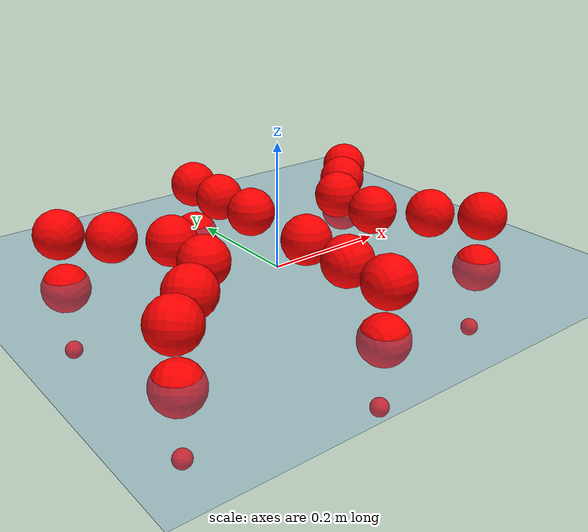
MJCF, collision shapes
<mujoco model="Golem">
  <compiler angle="radian" assetdir="assets" balanceinertia="true" inertiafromgeom="false"/>

  <option timestep="0.005" density="1.2" viscosity="2e-05"/>

  <size nkey="1"/>

  <visual>
    <quality shadowsize="8192"/>
    <map shadowclip="0.5"/>
  </visual>

  <default>
    <default class="/">
      <joint armature="0.01" damping="0.01" frictionloss="0.01"/>
      <geom contype="0" conaffinity="0" group="1" solref="-1000 -80"/>
      <site size="0.01 0.005 0.005" group="5"/>
      <general forcelimited="true" biastype="affine" gainprm="25" biasprm="0 -25 -0.5"/>
      <default class="visual">
        <geom type="mesh" group="2"/>
      </default>
      <default class="collision">
        <geom group="3"/>
      </default>
      <default class="foot">
        <geom size="0.01 0 0" condim="6" group="4" priority="1" solimp="0.015 1 0.01"/>
      </default>
      <default class="reward_collision_sphere">
        <geom group="5" rgba="1 0 0 1"/>
      </default>
    </default>
  </default>

  <asset>
    <texture type="skybox" colorspace="auto" name="//unnamed_texture_0" builtin="gradient" rgb1="0.95 0.95 0.95" rgb2="0.95 0.95 0.95" width="100" height="600"/>
    <texture type="2d" colorspace="auto" name="texplane" builtin="checker" rgb1="0.345 0.575 0.748" rgb2="0.345 0.575 0.748" markrgb="1 1 1" width="512" height="512"/>
    <material name="MatPlane" class="/" texture="texplane" texuniform="true" texrepeat="2 2" specular="0.9"/>
    <mesh name="body" class="/" file="body.stl" scale="0.001 0.001 0.001"/>
    <mesh name="coxa" class="/" file="coxa.stl" scale="0.001 0.001 0.001"/>
    <mesh name="femur" class="/" file="femur.stl" scale="0.001 0.001 0.001"/>
    <mesh name="tibia" class="/" file="tibia.stl" scale="0.001 0.001 0.001"/>
    <mesh name="tarsus" class="/" file="tarsus.stl" scale="0.001 0.001 0.001"/>
  </asset>

  <worldbody>
    <geom name="floor" class="/" size="100 100 0.125" type="plane" group="0" material="MatPlane"/>
    <light name="toplight_shadow" class="/" pos="0 0 5" dir="0.0990148 0.0990148 -0.990148" type="directional" ambient="0.04 0.04 0.04" diffuse="0.55 0.55 0.55" specular="0.12 0.12 0.12"/>
    <light name="toplight_fill" class="/" pos="0 0 5" dir="0.0990148 0.0990148 -0.990148" type="directional" castshadow="false" ambient="0.04 0.04 0.04" diffuse="0.3 0.3 0.3" specular="0.08 0.08 0.08"/>
    <body name="trunk" pos="0.00071688 0.000902627 0.000475525" quat="1 4.63967e-05 0.000226246 -0.000371888">
      <inertial pos="-0.000393998 0.000340773 -0.00483363" quat="0.999991 0.00430025 -0.000298573 -0.000279844" mass="3.17921" diaginertia="0.0110537 0.00249789 0.0147483"/>
      <joint name="//unnamed_joint_0" type="free"/>
      <geom name="//unnamed_geom_1" class="/" pos="0 0 0.0693966" quat="1 0 0 0" type="mesh" rgba="0.9 0.9 0.9 1" mesh="body"/>
      <site name="imu" class="/" pos="0.134013 -0.0036237 0.107595" size="0.00955414"/>
      <camera name="track" class="/" pos="0 -1.51734 0" quat="0.707107 0.707107 0 0" mode="trackcom"/>
      <camera name="ego_camera" class="/" pos="0.133022 0 0.108432" quat="-0.5 -0.5 0.5 0.5"/>
      <body name="coxa_RR" pos="-0.181675 -0.0634596 0.0690282" quat="0.382677 -0.00036536 -0.000155018 -0.923882">
        <inertial pos="-0.000238903 0.000496512 3.82443e-05" quat="1 -0.000390547 -0.000166109 0.000776578" mass="0.174605" diaginertia="0.0113381 0.00251281 0.0146811"/>
        <joint name="coxa_joint_RR" class="/" pos="0 0 0" axis="0.000941749 0.0033728 -0.999994" range="-3.14171 3.1544" armature="0.00935374" damping="0.0115862" frictionloss="0.00950426"/>
        <geom name="//unnamed_geom_2" class="/" type="mesh" rgba="0.2 0.2 0.2 1" mesh="coxa"/>
        <geom name="//unnamed_geom_3" class="reward_collision_sphere" size="0.0382166" pos="-0.0306975 0 0"/>
        <body name="femur_RR" pos="0.0609732 0.00197338 -0.000363097" quat="0.499854 -0.49991 0.500177 0.500058">
          <inertial pos="-0.0012617 2.76285e-05 -0.00177835" quat="0.999973 0.00656446 0.00125885 -0.00304356" mass="0.174389" diaginertia="0.0112408 0.00252257 0.0149287"/>
          <joint name="femur_joint_RR" class="/" pos="0 0 0" axis="0.00434283 0.00305216 -0.999986" range="-3.13766 3.13952" armature="0.00954972" damping="0" frictionloss="0.00949961"/>
          <geom name="//unnamed_geom_4" class="/" type="mesh" rgba="0.9 0.9 0.9 1" mesh="femur"/>
          <geom name="//unnamed_geom_5" class="reward_collision_sphere" size="0.0382166"/>
          <body name="tibia_RR" pos="0.0010977 -0.082843 -0.000883871" quat="0.000106516 1 -8.17697e-05 -7.13801e-05">
            <inertial pos="0.000167438 -7.21299e-05 -0.000391316" quat="0.99999 -0.00049551 -0.00451734 -0.000508013" mass="0.176684" diaginertia="0.0114188 0.00256057 0.0153554"/>
            <joint name="tibia_joint_RR" class="/" pos="0 0 0" axis="0.00085907 0.000927629 0.999999" range="-3.12139 3.13735" armature="0.0100123" damping="0" frictionloss="0.00963223"/>
            <geom name="//unnamed_geom_6" class="/" type="mesh" rgba="0.2 0.2 0.2 1" mesh="tibia"/>
            <geom name="//unnamed_geom_7" class="reward_collision_sphere" size="0.0382166"/>
            <body name="tarsus_RR" pos="0.0895995 -0.000323466 -0.000238867" quat="1 -1.2886e-05 1.79258e-05 6.7312e-06">
              <inertial pos="0.0630934 0.00044173 -0.000260877" quat="0.495905 0.503236 0.504013 0.496792" mass="0.180045" diaginertia="0.0111954 0.00252713 0.0152337"/>
              <joint name="tarsus_joint_RR" class="/" pos="0 0 0" axis="-0.00168263 0.000381547 0.999999" range="-3.1347 3.15305" armature="0.00991991" damping="0.0413901" frictionloss="0.00951617"/>
              <geom name="//unnamed_geom_8" class="/" type="mesh" rgba="0.9 0.9 0.9 1" mesh="tarsus"/>
              <geom name="foot_1" class="foot" size="0.00943897" pos="0.114604 0 0" quat="0 -0.707107 0 0.707107"/>
              <geom name="//unnamed_geom_10" class="reward_collision_sphere" size="0.0382166"/>
              <geom name="//unnamed_geom_11" class="reward_collision_sphere" size="0.0143312" pos="0.109999 0 0"/>
              <site name="foot_1" class="foot" pos="0.114604 0 0" quat="0 -0.707107 0 0.707107" size="0.00955414"/>
            </body>
          </body>
        </body>
      </body>
      <body name="coxa_RM" pos="-0.000485877 -0.100999 0.0695419" quat="0.707284 -0.000533914 -0.000275083 -0.70693">
        <inertial pos="0.000147027 0.000168783 -0.000554987" quat="0.999999 -0.00128951 -0.000713437 -0.000201393" mass="0.174543" diaginertia="0.0111268 0.00251196 0.0150739"/>
        <joint name="coxa_joint_RM" class="/" pos="0 0 0" axis="0.000163935 -0.00034175 -1" range="-3.14699 3.13027" armature="0.00979763" damping="0.0103393" frictionloss="0.00997213"/>
        <geom name="//unnamed_geom_12" class="/" type="mesh" rgba="0.2 0.2 0.2 1" mesh="coxa"/>
        <geom name="//unnamed_geom_13" class="reward_collision_sphere" size="0.0382166" pos="-0.0306975 0 0"/>
        <body name="femur_RM" pos="0.060136 -0.000787501 -0.000927189" quat="0.499736 -0.500199 0.500117 0.499948">
          <inertial pos="0.000980355 3.02176e-05 0.000208397" quat="0.999979 0.00335123 0.00313177 -0.00467011" mass="0.174064" diaginertia="0.0112333 0.00251362 0.0148989"/>
          <joint name="femur_joint_RM" class="/" pos="0 0 0" axis="-0.000182939 -0.00014662 -1" range="-3.14522 3.13605" armature="0.00925092" damping="0.01002" frictionloss="0.00943346"/>
          <geom name="//unnamed_geom_14" class="/" type="mesh" rgba="0.9 0.9 0.9 1" mesh="femur"/>
          <geom name="//unnamed_geom_15" class="reward_collision_sphere" size="0.0382166"/>
          <body name="tibia_RM" pos="-0.000335721 -0.0810097 -0.000370296" quat="0.000153526 1 -3.60963e-05 3.5262e-05">
            <inertial pos="-0.00125813 -0.000685249 0.000864758" quat="0.999997 -0.000292419 0.00235268 -0.00116226" mass="0.172656" diaginertia="0.0112258 0.00253083 0.0147782"/>
            <joint name="tibia_joint_RM" class="/" pos="0 0 0" axis="0.00548112 0.00264334 0.999981" stiffness="0.000948518" range="-3.14591 3.15355" armature="0.0095959" damping="0.0134055" frictionloss="0.00987849"/>
            <geom name="//unnamed_geom_16" class="/" type="mesh" rgba="0.2 0.2 0.2 1" mesh="tibia"/>
            <geom name="//unnamed_geom_17" class="reward_collision_sphere" size="0.0382166"/>
            <body name="tarsus_RM" pos="0.088398 -0.00111236 0.000938044" quat="1 4.60245e-05 -7.77207e-05 0.000111423">
              <inertial pos="0.0610718 -0.000233332 0.00024636" quat="0.499082 0.50153 0.499536 0.499849" mass="0.173941" diaginertia="0.0110883 0.00249518 0.0148678"/>
              <joint name="tarsus_joint_RM" class="/" pos="0 0 0" axis="-0.000352827 -0.000717486 1" range="-3.14052 3.13901" armature="0.00953263" damping="0.00785619" frictionloss="0.00952578"/>
              <geom name="//unnamed_geom_18" class="/" type="mesh" rgba="0.9 0.9 0.9 1" mesh="tarsus"/>
              <geom name="foot_2" class="foot" size="0.00928003" pos="0.114604 0 0" quat="0 -0.707107 0 0.707107"/>
              <geom name="//unnamed_geom_20" class="reward_collision_sphere" size="0.0382166"/>
              <geom name="//unnamed_geom_21" class="reward_collision_sphere" size="0.0143312" pos="0.109999 0 0"/>
              <site name="foot_2" class="foot" pos="0.114604 0 0" quat="0 -0.707107 0 0.707107" size="0.00955414"/>
            </body>
          </body>
        </body>
      </body>
      <body name="coxa_RF" pos="0.182149 -0.0625709 0.0690683" quat="0.923889 0.000288884 -6.9133e-05 -0.38266">
        <inertial pos="-0.00139284 0.000423611 0.000127259" quat="0.999999 -0.000221677 0.000358228 0.00127784" mass="0.176909" diaginertia="0.0109923 0.00245982 0.0148746"/>
        <joint name="coxa_joint_RF" class="/" pos="0 0 0" axis="0.00295363 -0.00273647 -0.999992" stiffness="0.000179537" range="-3.12184 3.13646" armature="0.00942709" damping="0.00841555" frictionloss="0.00975786"/>
        <geom name="//unnamed_geom_22" class="/" type="mesh" rgba="0.2 0.2 0.2 1" mesh="coxa"/>
        <geom name="//unnamed_geom_23" class="reward_collision_sphere" size="0.0382166" pos="-0.0306975 0 0"/>
        <body name="femur_RF" pos="0.060006 -0.000801295 -0.000458296" quat="0.499807 -0.500142 0.499844 0.500207">
          <inertial pos="-0.000860624 0.00104752 -0.000864004" quat="1 3.0934e-05 -0.000197921 0.000182654" mass="0.175672" diaginertia="0.0111007 0.00250461 0.0149089"/>
          <joint name="femur_joint_RF" class="/" pos="0 0 0" axis="-0.00223205 0.00310911 -0.999993" range="-3.12792 3.1508" armature="0.00954079" damping="0.0108176" frictionloss="0.00951161"/>
          <geom name="//unnamed_geom_24" class="/" type="mesh" rgba="0.9 0.9 0.9 1" mesh="femur"/>
          <geom name="//unnamed_geom_25" class="reward_collision_sphere" size="0.0382166"/>
          <body name="tibia_RF" pos="0.000615782 -0.0813052 -0.000641895" quat="9.47487e-06 1 -0.000117085 -7.10093e-05">
            <inertial pos="-0.000649273 -1.45386e-05 0.000957867" quat="0.999989 -0.00357408 -0.000723456 -0.00294809" mass="0.173603" diaginertia="0.0111943 0.00251461 0.0149672"/>
            <joint name="tibia_joint_RF" class="/" pos="0 0 0" axis="-0.00142147 -0.00481565 0.999987" range="-3.14403 3.14496" armature="0.00946396" damping="0" frictionloss="0.00944082"/>
            <geom name="//unnamed_geom_26" class="/" type="mesh" rgba="0.2 0.2 0.2 1" mesh="tibia"/>
            <geom name="//unnamed_geom_27" class="reward_collision_sphere" size="0.0382166"/>
            <body name="tarsus_RF" pos="0.0898191 0.000358573 -1.23405e-05" quat="1 5.09679e-05 0.000210463 0.000104464">
              <inertial pos="0.0597625 0.000127371 0.000279823" quat="0.500451 0.50062 0.498699 0.500228" mass="0.173425" diaginertia="0.0111057 0.00256344 0.0149941"/>
              <joint name="tarsus_joint_RF" class="/" pos="0 0 0" axis="-0.0029352 -0.00706013 0.999971" range="-3.12024 3.13562" armature="0.00946723" damping="0" frictionloss="0.010339"/>
              <geom name="//unnamed_geom_28" class="/" type="mesh" rgba="0.9 0.9 0.9 1" mesh="tarsus"/>
              <geom name="foot_3" class="foot" size="0.00988152" pos="0.114604 0 0" quat="0 -0.707107 0 0.707107"/>
              <geom name="//unnamed_geom_30" class="reward_collision_sphere" size="0.0382166"/>
              <geom name="//unnamed_geom_31" class="reward_collision_sphere" size="0.0143312" pos="0.109999 0 0"/>
              <site name="foot_3" class="foot" pos="0.114604 0 0" quat="0 -0.707107 0 0.707107" size="0.00955414"/>
            </body>
          </body>
        </body>
      </body>
      <body name="coxa_LR" pos="-0.181968 0.0653262 0.0707993" quat="0.382578 -0.000141132 0.000226096 0.923923">
        <inertial pos="-0.000343611 -9.60653e-05 -0.000895563" quat="1 0.000106885 0.000765761 -2.7691e-05" mass="0.169979" diaginertia="0.0109595 0.00245858 0.0147123"/>
        <joint name="coxa_joint_LR" class="/" pos="0 0 0" axis="0.000721931 -0.000564957 -1" range="-3.1358 3.16906" armature="0.00948984" damping="0.00597806" frictionloss="0.0088356"/>
        <geom name="//unnamed_geom_32" class="/" type="mesh" rgba="0.2 0.2 0.2 1" mesh="coxa"/>
        <geom name="//unnamed_geom_33" class="reward_collision_sphere" size="0.0382166" pos="-0.0306975 0 0"/>
        <body name="femur_LR" pos="0.0611956 -0.00311697 -0.00150966" quat="0.499994 -0.499997 0.5 0.500009">
          <inertial pos="0.000422341 -0.000349344 -1.75715e-06" quat="0.999989 -0.00467905 0.000246488 0.000307594" mass="0.176425" diaginertia="0.0114676 0.00259625 0.0151841"/>
          <joint name="femur_joint_LR" class="/" pos="0 0 0" axis="-0.000979081 0.00304146 0.999995" range="-3.14248 3.1423" armature="0.00927414" damping="0.00770697" frictionloss="0.00965449"/>
          <geom name="//unnamed_geom_34" class="/" type="mesh" rgba="0.9 0.9 0.9 1" mesh="femur"/>
          <geom name="//unnamed_geom_35" class="reward_collision_sphere" size="0.0382166"/>
          <body name="tibia_LR" pos="0.000294065 -0.0822938 -0.00127388" quat="6.70998e-05 1 1.84169e-05 2.38772e-05">
            <inertial pos="-0.00104223 0.00141546 0.000174207" quat="1 6.37401e-05 1.40863e-06 6.56553e-05" mass="0.175405" diaginertia="0.0114478 0.00251772 0.0147057"/>
            <joint name="tibia_joint_LR" class="/" pos="0 0 0" axis="2.15244e-05 0.000138831 -1" range="-3.14236 3.13822" armature="0.00937408" damping="0.00159447" frictionloss="0.0091023"/>
            <geom name="//unnamed_geom_36" class="/" type="mesh" rgba="0.2 0.2 0.2 1" mesh="tibia"/>
            <geom name="//unnamed_geom_37" class="reward_collision_sphere" size="0.0382166"/>
            <body name="tarsus_LR" pos="0.0908153 -0.000244704 0.00247407" quat="1 0.000345568 0.000193522 -0.000315253">
              <inertial pos="0.0630902 0.00128711 0.000673795" quat="0.500079 0.49624 0.501076 0.502583" mass="0.169733" diaginertia="0.0108898 0.00246249 0.0146515"/>
              <joint name="tarsus_joint_LR" class="/" pos="0 0 0" axis="0.00147717 0.000106522 -0.999999" stiffness="0.00110654" range="-3.14941 3.13136" armature="0.00877282" damping="0.0286845" frictionloss="0.009808"/>
              <geom name="//unnamed_geom_38" class="/" type="mesh" rgba="0.9 0.9 0.9 1" mesh="tarsus"/>
              <geom name="foot_4" class="foot" size="0.0093952" pos="0.114604 0 0" quat="0.707107 0 -0.707107 0"/>
              <geom name="//unnamed_geom_40" class="reward_collision_sphere" size="0.0382166"/>
              <geom name="//unnamed_geom_41" class="reward_collision_sphere" size="0.0143312" pos="0.109999 0 0"/>
              <site name="foot_4" class="foot" pos="0.114604 0 0" quat="0.707107 0 -0.707107 0" size="0.00955414"/>
            </body>
          </body>
        </body>
      </body>
      <body name="coxa_LM" pos="-0.000257989 0.0992195 0.0699095" quat="0.706653 -0.000270137 0.00020122 0.70756">
        <inertial pos="0.000721474 -0.000797556 0.00196349" quat="1 0.000577018 -8.71231e-05 -0.000739839" mass="0.173802" diaginertia="0.0110788 0.00249877 0.0148435"/>
        <joint name="coxa_joint_LM" class="/" pos="0 0 0" axis="0.000214994 -0.00356385 -0.999994" range="-3.13637 3.14386" armature="0.0103315" damping="0" frictionloss="0.00938203"/>
        <geom name="//unnamed_geom_42" class="/" type="mesh" rgba="0.2 0.2 0.2 1" mesh="coxa"/>
        <geom name="//unnamed_geom_43" class="reward_collision_sphere" size="0.0382166" pos="-0.0306975 0 0"/>
        <body name="femur_LM" pos="0.0576786 0.00143851 -0.000528125" quat="0.499809 -0.49997 0.499963 0.500259">
          <inertial pos="-0.000298304 -0.000219183 -0.000798282" quat="0.99999 0.00246352 -0.00270155 0.00269539" mass="0.174696" diaginertia="0.0110976 0.00251007 0.0148833"/>
          <joint name="femur_joint_LM" class="/" pos="0 0 0" axis="0.00225487 -0.00261982 0.999994" range="-3.15563 3.13804" armature="0.00918767" damping="0.00533203" frictionloss="0.00955369"/>
          <geom name="//unnamed_geom_44" class="/" type="mesh" rgba="0.9 0.9 0.9 1" mesh="femur"/>
          <geom name="//unnamed_geom_45" class="reward_collision_sphere" size="0.0382166"/>
          <body name="tibia_LM" pos="-0.000639411 -0.0792725 0.000768497" quat="2.64833e-06 1 1.11133e-06 -2.95852e-05">
            <inertial pos="0.00115371 -0.00152381 0.00169923" quat="1 0.000138857 -0.000315752 -0.000883402" mass="0.174914" diaginertia="0.0113817 0.00250023 0.0149633"/>
            <joint name="tibia_joint_LM" class="/" pos="0 0 0" axis="-0.00196215 -0.00580574 -0.999981" range="-3.14274 3.14357" armature="0.00929653" damping="0.00151084" frictionloss="0.00965164"/>
            <geom name="//unnamed_geom_46" class="/" type="mesh" rgba="0.2 0.2 0.2 1" mesh="tibia"/>
            <geom name="//unnamed_geom_47" class="reward_collision_sphere" size="0.0382166"/>
            <body name="tarsus_LM" pos="0.0917265 -0.000547551 -0.000822563" quat="1 8.46071e-05 -0.00022962 0.000221941">
              <inertial pos="0.0617304 -0.000109337 -0.000871867" quat="0.500681 0.498862 0.499697 0.500758" mass="0.177503" diaginertia="0.0112631 0.00261789 0.0154114"/>
              <joint name="tarsus_joint_LM" class="/" pos="0 0 0" axis="0.000307589 0.00185548 -0.999998" range="-3.17704 3.14769" armature="0.00959983" damping="0" frictionloss="0.00949147"/>
              <geom name="//unnamed_geom_48" class="/" type="mesh" rgba="0.9 0.9 0.9 1" mesh="tarsus"/>
              <geom name="foot_5" class="foot" size="0.00963349" pos="0.114604 0 0" quat="0.707107 0 -0.707107 0"/>
              <geom name="//unnamed_geom_50" class="reward_collision_sphere" size="0.0382166"/>
              <geom name="//unnamed_geom_51" class="reward_collision_sphere" size="0.0143312" pos="0.109999 0 0"/>
              <site name="foot_5" class="foot" pos="0.114604 0 0" quat="0.707107 0 -0.707107 0" size="0.00955414"/>
            </body>
          </body>
        </body>
      </body>
      <body name="coxa_LF" pos="0.182175 0.0645573 0.0707201" quat="0.923986 0.000390824 0.000139452 0.382426">
        <inertial pos="4.97663e-05 0.00154915 0.000682018" quat="0.999999 0.000258566 -0.000259121 0.00136647" mass="0.177765" diaginertia="0.0115529 0.0025566 0.0152808"/>
        <joint name="coxa_joint_LF" class="/" pos="0 0 0" axis="0.000486334 -0.000990303 -0.999999" stiffness="0.000566889" range="-3.14081 3.14127" armature="0.0104382" damping="0.00351204" frictionloss="0.0094688"/>
        <geom name="//unnamed_geom_52" class="/" type="mesh" rgba="0.2 0.2 0.2 1" mesh="coxa"/>
        <geom name="//unnamed_geom_53" class="reward_collision_sphere" size="0.0382166" pos="-0.0306975 0 0"/>
        <body name="femur_LF" pos="0.0611361 -0.00139705 -0.00212492" quat="0.500061 -0.500065 0.499893 0.499982">
          <inertial pos="-0.00065042 -0.000362555 0.0016787" quat="0.999996 -5.75284e-05 0.00185319 -0.00209732" mass="0.175203" diaginertia="0.0113374 0.00257108 0.0149803"/>
          <joint name="femur_joint_LF" class="/" pos="0 0 0" axis="0.0014866 0.00260073 0.999996" range="-3.14039 3.11252" armature="0.0095171" damping="0.000316909" frictionloss="0.00963223"/>
          <geom name="//unnamed_geom_54" class="/" type="mesh" rgba="0.9 0.9 0.9 1" mesh="femur"/>
          <geom name="//unnamed_geom_55" class="reward_collision_sphere" size="0.0382166"/>
          <body name="tibia_LF" pos="0.000918601 -0.0815693 0.00103672" quat="6.14133e-05 1 0.00011518 -0.000187245">
            <inertial pos="9.69621e-05 -0.000933167 2.28409e-05" quat="0.999997 -0.00192199 0.0016925 -0.000642621" mass="0.175308" diaginertia="0.0113651 0.00251587 0.0150904"/>
            <joint name="tibia_joint_LF" class="/" pos="0 0 0" axis="-0.00425578 -4.88302e-05 -0.999991" range="-3.14535 3.13777" armature="0.00920136" damping="0.000662483" frictionloss="0.00998077"/>
            <geom name="//unnamed_geom_56" class="/" type="mesh" rgba="0.2 0.2 0.2 1" mesh="tibia"/>
            <geom name="//unnamed_geom_57" class="reward_collision_sphere" size="0.0382166"/>
            <body name="tarsus_LF" pos="0.0906272 -0.000465504 0.000448458" quat="1 -0.000906267 0.000211646 5.71642e-05">
              <inertial pos="0.0634848 0.00017374 0.000568912" quat="0.500614 0.499417 0.500092 0.499876" mass="0.175241" diaginertia="0.0109727 0.00246005 0.0148919"/>
              <joint name="tarsus_joint_LF" class="/" pos="0 0 0" axis="0.00956439 -0.00391944 -0.999947" stiffness="0.0274304" range="-3.14781 3.13162" armature="0.00932153" damping="0.0221274" frictionloss="0.00908897"/>
              <geom name="//unnamed_geom_58" class="/" type="mesh" rgba="0.9 0.9 0.9 1" mesh="tarsus"/>
              <geom name="foot_6" class="foot" size="0.00932309" pos="0.114604 0 0" quat="0.707107 0 -0.707107 0"/>
              <geom name="//unnamed_geom_60" class="reward_collision_sphere" size="0.0382166"/>
              <geom name="//unnamed_geom_61" class="reward_collision_sphere" size="0.0143312" pos="0.109999 0 0"/>
              <site name="foot_6" class="foot" pos="0.114604 0 0" quat="0.707107 0 -0.707107 0" size="0.00955414"/>
            </body>
          </body>
        </body>
      </body>
    </body>
  </worldbody>

  <contact>
    <pair class="/" geom1="floor" geom2="foot_1" name="//unnamed_contact_0"/>
    <pair class="/" geom1="floor" geom2="foot_2" name="//unnamed_contact_1"/>
    <pair class="/" geom1="floor" geom2="foot_3" name="//unnamed_contact_2"/>
    <pair class="/" geom1="floor" geom2="foot_4" name="//unnamed_contact_3"/>
    <pair class="/" geom1="floor" geom2="foot_5" name="//unnamed_contact_4"/>
    <pair class="/" geom1="floor" geom2="foot_6" name="//unnamed_contact_5"/>
  </contact>

  <actuator>
    <general name="coxa_joint_RR" class="/" joint="coxa_joint_RR" forcerange="-6.66589 6.66589" gainprm="23.1191" biasprm="0 -23.1191 -0.506549"/>
    <general name="femur_joint_RR" class="/" joint="femur_joint_RR" forcerange="-6.72822 6.72822" gainprm="23.1191" biasprm="0 -23.1191 -0.506549"/>
    <general name="tibia_joint_RR" class="/" joint="tibia_joint_RR" forcerange="-6.56029 6.56029" gainprm="23.1191" biasprm="0 -23.1191 -0.506549"/>
    <general name="tarsus_joint_RR" class="/" joint="tarsus_joint_RR" forcerange="-6.72535 6.72535" gainprm="23.1191" biasprm="0 -23.1191 -0.506549"/>
    <general name="coxa_joint_RM" class="/" joint="coxa_joint_RM" forcerange="-6.98032 6.98032" gainprm="23.1191" biasprm="0 -23.1191 -0.506549"/>
    <general name="femur_joint_RM" class="/" joint="femur_joint_RM" forcerange="-6.97524 6.97524" gainprm="23.1191" biasprm="0 -23.1191 -0.506549"/>
    <general name="tibia_joint_RM" class="/" joint="tibia_joint_RM" forcerange="-6.77959 6.77959" gainprm="23.1191" biasprm="0 -23.1191 -0.506549"/>
    <general name="tarsus_joint_RM" class="/" joint="tarsus_joint_RM" forcerange="-7.35671 7.35671" gainprm="23.1191" biasprm="0 -23.1191 -0.506549"/>
    <general name="coxa_joint_RF" class="/" joint="coxa_joint_RF" forcerange="-7.06346 7.06346" gainprm="23.1191" biasprm="0 -23.1191 -0.506549"/>
    <general name="femur_joint_RF" class="/" joint="femur_joint_RF" forcerange="-7.05888 7.05888" gainprm="23.1191" biasprm="0 -23.1191 -0.506549"/>
    <general name="tibia_joint_RF" class="/" joint="tibia_joint_RF" forcerange="-7.25649 7.25649" gainprm="23.1191" biasprm="0 -23.1191 -0.506549"/>
    <general name="tarsus_joint_RF" class="/" joint="tarsus_joint_RF" forcerange="-6.73346 6.73346" gainprm="23.1191" biasprm="0 -23.1191 -0.506549"/>
    <general name="coxa_joint_LR" class="/" joint="coxa_joint_LR" forcerange="-7.0048 7.0048" gainprm="23.1191" biasprm="0 -23.1191 -0.506549"/>
    <general name="femur_joint_LR" class="/" joint="femur_joint_LR" forcerange="-6.9371 6.9371" gainprm="23.1191" biasprm="0 -23.1191 -0.506549"/>
    <general name="tibia_joint_LR" class="/" joint="tibia_joint_LR" forcerange="-7.21265 7.21265" gainprm="23.1191" biasprm="0 -23.1191 -0.506549"/>
    <general name="tarsus_joint_LR" class="/" joint="tarsus_joint_LR" forcerange="-7.14597 7.14597" gainprm="23.1191" biasprm="0 -23.1191 -0.506549"/>
    <general name="coxa_joint_LM" class="/" joint="coxa_joint_LM" forcerange="-7.20983 7.20983" gainprm="23.1191" biasprm="0 -23.1191 -0.506549"/>
    <general name="femur_joint_LM" class="/" joint="femur_joint_LM" forcerange="-6.99983 6.99983" gainprm="23.1191" biasprm="0 -23.1191 -0.506549"/>
    <general name="tibia_joint_LM" class="/" joint="tibia_joint_LM" forcerange="-7.07222 7.07222" gainprm="23.1191" biasprm="0 -23.1191 -0.506549"/>
    <general name="tarsus_joint_LM" class="/" joint="tarsus_joint_LM" forcerange="-6.88007 6.88007" gainprm="23.1191" biasprm="0 -23.1191 -0.506549"/>
    <general name="coxa_joint_LF" class="/" joint="coxa_joint_LF" forcerange="-7.1346 7.1346" gainprm="23.1191" biasprm="0 -23.1191 -0.506549"/>
    <general name="femur_joint_LF" class="/" joint="femur_joint_LF" forcerange="-6.99682 6.99682" gainprm="23.1191" biasprm="0 -23.1191 -0.506549"/>
    <general name="tibia_joint_LF" class="/" joint="tibia_joint_LF" forcerange="-6.8144 6.8144" gainprm="23.1191" biasprm="0 -23.1191 -0.506549"/>
    <general name="tarsus_joint_LF" class="/" joint="tarsus_joint_LF" forcerange="-7.20098 7.20098" gainprm="23.1191" biasprm="0 -23.1191 -0.506549"/>
  </actuator>

  <sensor>
    <gyro site="imu" name="imu_angular_velocity"/>
    <velocimeter site="imu" name="imu_linear_velocity"/>
    <framelinvel objtype="site" objname="foot_1" name="foot_1_global_linear_velocity"/>
    <framelinvel objtype="site" objname="foot_2" name="foot_2_global_linear_velocity"/>
    <framelinvel objtype="site" objname="foot_3" name="foot_3_global_linear_velocity"/>
    <framelinvel objtype="site" objname="foot_4" name="foot_4_global_linear_velocity"/>
    <framelinvel objtype="site" objname="foot_5" name="foot_5_global_linear_velocity"/>
    <framelinvel objtype="site" objname="foot_6" name="foot_6_global_linear_velocity"/>
  </sensor>

  <keyframe>
    <key name="home" qpos="0 0 0.1457 1 0 0 0 0 0 0 0 0 0 0 0 0 0 0 0 0 0 0 0 0 0 0 0 0 0 0 0"/>
  </keyframe>
</mujoco>
